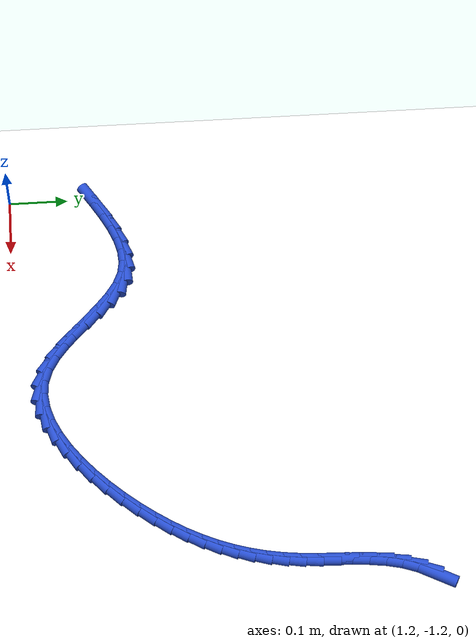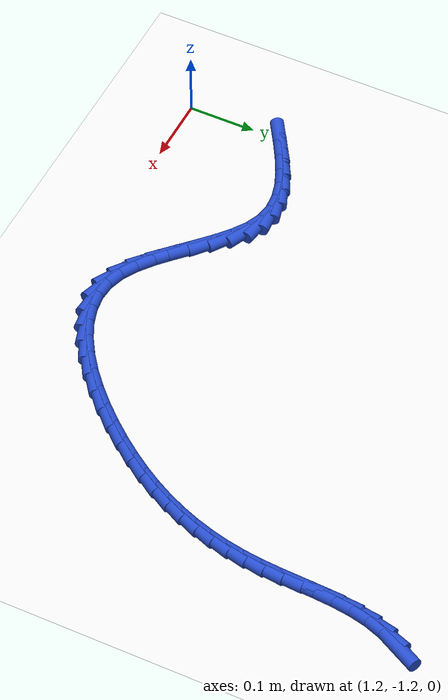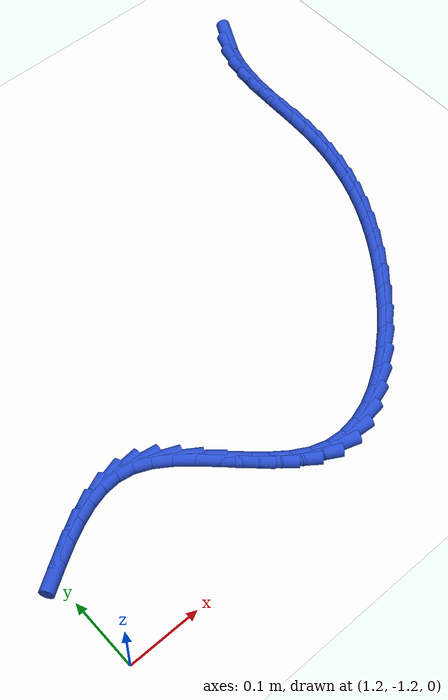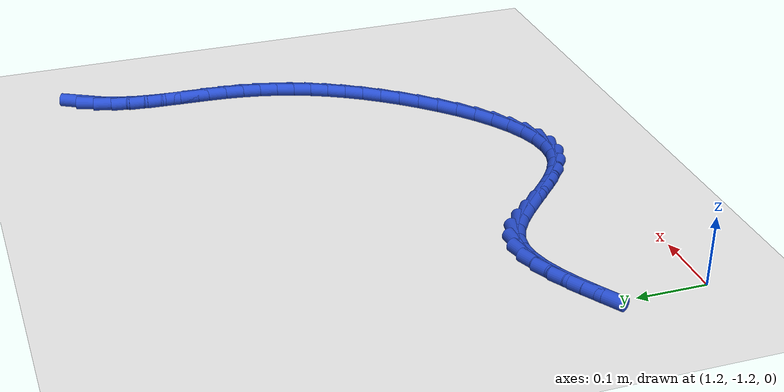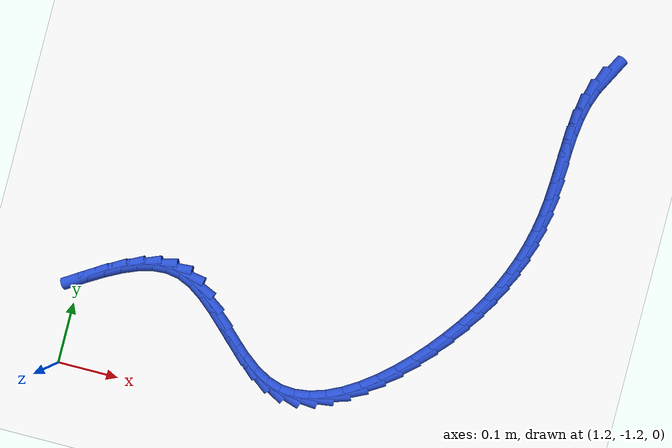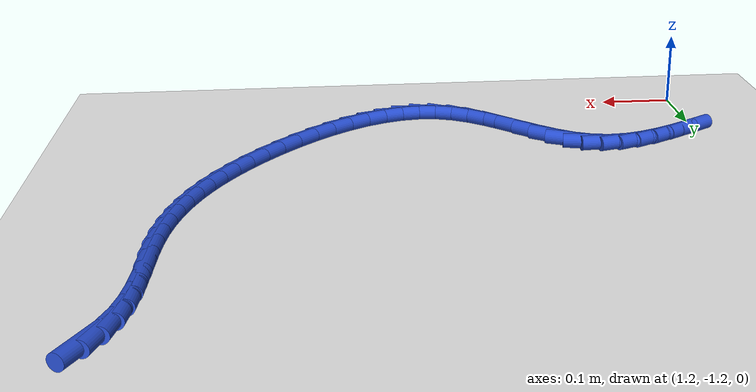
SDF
<sdf version="1.6">
 <world name="default">
  <model name="ground_plane">
   <static>1</static>
   <link name="link">
    <collision name="collision">
     <geometry><plane><normal>0 0 1</normal><size>100 100</size></plane></geometry>
     <surface><friction><ode><mu>100</mu><mu2>50</mu2></ode></friction></surface>
    </collision>
    <visual name="visual">
     <cast_shadows>0</cast_shadows>
     <geometry><plane><normal>0 0 1</normal><size>100 100</size></plane></geometry>
     <material>
      <script><uri>file://media/materials/scripts/gazebo.material</uri><name>Gazebo/WhiteGlow</name></script>
     </material>
    </visual>
   </link>
  </model>
  <model name="line">
   <link name="link_151">
    <pose>1.943033708011855 -0.5313639473231329 0.01 0 1.57 1.0860366454260373</pose>
    <collision name="collision">
     <geometry><cylinder><radius>0.01</radius><length>0.08</length></cylinder></geometry>
    </collision>
    <visual name="visual">
     <material>
      <script><name>Gazebo/Blue</name><uri>file://media/materials/scripts/gazebo.material</uri></script>
     </material>
     <geometry><cylinder><radius>0.01</radius><length>0.08</length></cylinder></geometry>
    </visual>
   </link>
   <link name="link_152">
    <pose>1.930702132157922 -0.5547779327994191 0.01 0 1.57 1.2293028746320067</pose>
    <collision name="collision">
     <geometry><cylinder><radius>0.01</radius><length>0.08</length></cylinder></geometry>
    </collision>
    <visual name="visual">
     <material>
      <script><name>Gazebo/Blue</name><uri>file://media/materials/scripts/gazebo.material</uri></script>
     </material>
     <geometry><cylinder><radius>0.01</radius><length>0.08</length></cylinder></geometry>
    </visual>
   </link>
   <link name="link_153">
    <pose>1.9218249859987055 -0.5797545625352505 0.01 0 1.57 1.35363578033377</pose>
    <collision name="collision">
     <geometry><cylinder><radius>0.01</radius><length>0.08</length></cylinder></geometry>
    </collision>
    <visual name="visual">
     <material>
      <script><name>Gazebo/Blue</name><uri>file://media/materials/scripts/gazebo.material</uri></script>
     </material>
     <geometry><cylinder><radius>0.01</radius><length>0.08</length></cylinder></geometry>
    </visual>
   </link>
   <link name="link_154">
    <pose>1.916008716091856 -0.6061154831035255 0.01 0 1.57 1.443277557621155</pose>
    <collision name="collision">
     <geometry><cylinder><radius>0.01</radius><length>0.08</length></cylinder></geometry>
    </collision>
    <visual name="visual">
     <material>
      <script><name>Gazebo/Blue</name><uri>file://media/materials/scripts/gazebo.material</uri></script>
     </material>
     <geometry><cylinder><radius>0.01</radius><length>0.08</length></cylinder></geometry>
    </visual>
   </link>
   <link name="link_155">
    <pose>1.9124957474366315 -0.6335146377511509 0.01 0 1.57 1.5008353037387863</pose>
    <collision name="collision">
     <geometry><cylinder><radius>0.01</radius><length>0.08</length></cylinder></geometry>
    </collision>
    <visual name="visual">
     <material>
      <script><name>Gazebo/Blue</name><uri>file://media/materials/scripts/gazebo.material</uri></script>
     </material>
     <geometry><cylinder><radius>0.01</radius><length>0.08</length></cylinder></geometry>
    </visual>
   </link>
   <link name="link_156">
    <pose>1.910527276083874 -0.6616054035532447 0.01 0 1.57 1.5292255427668227</pose>
    <collision name="collision">
     <geometry><cylinder><radius>0.01</radius><length>0.08</length></cylinder></geometry>
    </collision>
    <visual name="visual">
     <material>
      <script><name>Gazebo/Blue</name><uri>file://media/materials/scripts/gazebo.material</uri></script>
     </material>
     <geometry><cylinder><radius>0.01</radius><length>0.08</length></cylinder></geometry>
    </visual>
   </link>
   <link name="link_157">
    <pose>1.9093444980844247 -0.6900411575849228 0.01 0 1.57 1.5301672327749765</pose>
    <collision name="collision">
     <geometry><cylinder><radius>0.01</radius><length>0.08</length></cylinder></geometry>
    </collision>
    <visual name="visual">
     <material>
      <script><name>Gazebo/Blue</name><uri>file://media/materials/scripts/gazebo.material</uri></script>
     </material>
     <geometry><cylinder><radius>0.01</radius><length>0.08</length></cylinder></geometry>
    </visual>
   </link>
   <link name="link_158">
    <pose>1.908188609489125 -0.7184752769213031 0.01 0 1.57 1.5036818524684954</pose>
    <collision name="collision">
     <geometry><cylinder><radius>0.01</radius><length>0.08</length></cylinder></geometry>
    </collision>
    <visual name="visual">
     <material>
      <script><name>Gazebo/Blue</name><uri>file://media/materials/scripts/gazebo.material</uri></script>
     </material>
     <geometry><cylinder><radius>0.01</radius><length>0.08</length></cylinder></geometry>
    </visual>
   </link>
   <link name="link_159">
    <pose>1.9063008063488158 -0.7465611386375032 0.01 0 1.57 1.452475142938964</pose>
    <collision name="collision">
     <geometry><cylinder><radius>0.01</radius><length>0.08</length></cylinder></geometry>
    </collision>
    <visual name="visual">
     <material>
      <script><name>Gazebo/Blue</name><uri>file://media/materials/scripts/gazebo.material</uri></script>
     </material>
     <geometry><cylinder><radius>0.01</radius><length>0.08</length></cylinder></geometry>
    </visual>
   </link>
   <link name="link_160">
    <pose>1.9030366516896617 -0.7740195167704279 0.01 0 1.57 1.393670815576754</pose>
    <collision name="collision">
     <geometry><cylinder><radius>0.01</radius><length>0.08</length></cylinder></geometry>
    </collision>
    <visual name="visual">
     <material>
      <script><name>Gazebo/Blue</name><uri>file://media/materials/scripts/gazebo.material</uri></script>
     </material>
     <geometry><cylinder><radius>0.01</radius><length>0.08</length></cylinder></geometry>
    </visual>
   </link>
   <link name="link_161">
    <pose>1.8982330869543171 -0.8008548637759484 0.01 0 1.57 1.332754528721536</pose>
    <collision name="collision">
     <geometry><cylinder><radius>0.01</radius><length>0.08</length></cylinder></geometry>
    </collision>
    <visual name="visual">
     <material>
      <script><name>Gazebo/Blue</name><uri>file://media/materials/scripts/gazebo.material</uri></script>
     </material>
     <geometry><cylinder><radius>0.01</radius><length>0.08</length></cylinder></geometry>
    </visual>
   </link>
   <link name="link_162">
    <pose>1.8918536849717844 -0.8271462565431055 0.01 0 1.57 1.270704863558683</pose>
    <collision name="collision">
     <geometry><cylinder><radius>0.01</radius><length>0.08</length></cylinder></geometry>
    </collision>
    <visual name="visual">
     <material>
      <script><name>Gazebo/Blue</name><uri>file://media/materials/scripts/gazebo.material</uri></script>
     </material>
     <geometry><cylinder><radius>0.01</radius><length>0.08</length></cylinder></geometry>
    </visual>
   </link>
   <link name="link_163">
    <pose>1.8838620191604323 -0.8529727723082561 0.01 0 1.57 1.2085810032941826</pose>
    <collision name="collision">
     <geometry><cylinder><radius>0.01</radius><length>0.08</length></cylinder></geometry>
    </collision>
    <visual name="visual">
     <material>
      <script><name>Gazebo/Blue</name><uri>file://media/materials/scripts/gazebo.material</uri></script>
     </material>
     <geometry><cylinder><radius>0.01</radius><length>0.08</length></cylinder></geometry>
    </visual>
   </link>
   <link name="link_164">
    <pose>1.874221662938631 -0.8784134883077582 0.01 0 1.57 1.1474403853829385</pose>
    <collision name="collision">
     <geometry><cylinder><radius>0.01</radius><length>0.08</length></cylinder></geometry>
    </collision>
    <visual name="visual">
     <material>
      <script><name>Gazebo/Blue</name><uri>file://media/materials/scripts/gazebo.material</uri></script>
     </material>
     <geometry><cylinder><radius>0.01</radius><length>0.08</length></cylinder></geometry>
    </visual>
   </link>
   <link name="link_165">
    <pose>1.8628961897247485 -0.9035474817779692 0.01 0 1.57 1.0882567433073678</pose>
    <collision name="collision">
     <geometry><cylinder><radius>0.01</radius><length>0.08</length></cylinder></geometry>
    </collision>
    <visual name="visual">
     <material>
      <script><name>Gazebo/Blue</name><uri>file://media/materials/scripts/gazebo.material</uri></script>
     </material>
     <geometry><cylinder><radius>0.01</radius><length>0.08</length></cylinder></geometry>
    </visual>
   </link>
   <link name="link_166">
    <pose>1.8498491729371547 -0.9284538299552452 0.01 0 1.57 1.031853638440019</pose>
    <collision name="collision">
     <geometry><cylinder><radius>0.01</radius><length>0.08</length></cylinder></geometry>
    </collision>
    <visual name="visual">
     <material>
      <script><name>Gazebo/Blue</name><uri>file://media/materials/scripts/gazebo.material</uri></script>
     </material>
     <geometry><cylinder><radius>0.01</radius><length>0.08</length></cylinder></geometry>
    </visual>
   </link>
   <link name="link_167">
    <pose>1.8350441859942193 -0.9532116100759441 0.01 0 1.57 0.9788634978069253</pose>
    <collision name="collision">
     <geometry><cylinder><radius>0.01</radius><length>0.08</length></cylinder></geometry>
    </collision>
    <visual name="visual">
     <material>
      <script><name>Gazebo/Blue</name><uri>file://media/materials/scripts/gazebo.material</uri></script>
     </material>
     <geometry><cylinder><radius>0.01</radius><length>0.08</length></cylinder></geometry>
    </visual>
   </link>
   <link name="link_168">
    <pose>1.8184448023143107 -0.9778998993764236 0.01 0 1.57 0.9297086342176595</pose>
    <collision name="collision">
     <geometry><cylinder><radius>0.01</radius><length>0.08</length></cylinder></geometry>
    </collision>
    <visual name="visual">
     <material>
      <script><name>Gazebo/Blue</name><uri>file://media/materials/scripts/gazebo.material</uri></script>
     </material>
     <geometry><cylinder><radius>0.01</radius><length>0.08</length></cylinder></geometry>
    </visual>
   </link>
   <link name="link_169">
    <pose>1.8000149495862785 -1.0025969879653414 0.01 0 1.57 0.8829764585168599</pose>
    <collision name="collision">
     <geometry><cylinder><radius>0.01</radius><length>0.08</length></cylinder></geometry>
    </collision>
    <visual name="visual">
     <material>
      <script><name>Gazebo/Blue</name><uri>file://media/materials/scripts/gazebo.material</uri></script>
     </material>
     <geometry><cylinder><radius>0.01</radius><length>0.08</length></cylinder></geometry>
    </visual>
   </link>
   <link name="link_170">
    <pose>1.7798011681152268 -1.0271976150138604 0.01 0 1.57 0.8338442475203783</pose>
    <collision name="collision">
     <geometry><cylinder><radius>0.01</radius><length>0.08</length></cylinder></geometry>
    </collision>
    <visual name="visual">
     <material>
      <script><name>Gazebo/Blue</name><uri>file://media/materials/scripts/gazebo.material</uri></script>
     </material>
     <geometry><cylinder><radius>0.01</radius><length>0.08</length></cylinder></geometry>
    </visual>
   </link>
   <link name="link_171">
    <pose>1.7580381485868453 -1.0511784821062635 0.01 0 1.57 0.7794721221610186</pose>
    <collision name="collision">
     <geometry><cylinder><radius>0.01</radius><length>0.08</length></cylinder></geometry>
    </collision>
    <visual name="visual">
     <material>
      <script><name>Gazebo/Blue</name><uri>file://media/materials/scripts/gazebo.material</uri></script>
     </material>
     <geometry><cylinder><radius>0.01</radius><length>0.08</length></cylinder></geometry>
    </visual>
   </link>
   <link name="link_172">
    <pose>1.7349866441395219 -1.0739583845669494 0.01 0 1.57 0.7171434347511889</pose>
    <collision name="collision">
     <geometry><cylinder><radius>0.01</radius><length>0.08</length></cylinder></geometry>
    </collision>
    <visual name="visual">
     <material>
      <script><name>Gazebo/Blue</name><uri>file://media/materials/scripts/gazebo.material</uri></script>
     </material>
     <geometry><cylinder><radius>0.01</radius><length>0.08</length></cylinder></geometry>
    </visual>
   </link>
   <link name="link_173">
    <pose>1.7109074079116462 -1.094956117720316 0.01 0 1.57 0.6434933301573655</pose>
    <collision name="collision">
     <geometry><cylinder><radius>0.01</radius><length>0.08</length></cylinder></geometry>
    </collision>
    <visual name="visual">
     <material>
      <script><name>Gazebo/Blue</name><uri>file://media/materials/scripts/gazebo.material</uri></script>
     </material>
     <geometry><cylinder><radius>0.01</radius><length>0.08</length></cylinder></geometry>
    </visual>
   </link>
   <link name="link_174">
    <pose>1.6860611930416078 -1.1135904768907636 0.01 0 1.57 0.5541766729488521</pose>
    <collision name="collision">
     <geometry><cylinder><radius>0.01</radius><length>0.08</length></cylinder></geometry>
    </collision>
    <visual name="visual">
     <material>
      <script><name>Gazebo/Blue</name><uri>file://media/materials/scripts/gazebo.material</uri></script>
     </material>
     <geometry><cylinder><radius>0.01</radius><length>0.08</length></cylinder></geometry>
    </visual>
   </link>
   <link name="link_175">
    <pose>1.6607087526677948 -1.1292802574026906 0.01 0 1.57 0.4436073323603183</pose>
    <collision name="collision">
     <geometry><cylinder><radius>0.01</radius><length>0.08</length></cylinder></geometry>
    </collision>
    <visual name="visual">
     <material>
      <script><name>Gazebo/Blue</name><uri>file://media/materials/scripts/gazebo.material</uri></script>
     </material>
     <geometry><cylinder><radius>0.01</radius><length>0.08</length></cylinder></geometry>
    </visual>
   </link>
   <link name="link_176">
    <pose>1.6351108399285965 -1.1414442545804966 0.01 0 1.57 0.30510677520673435</pose>
    <collision name="collision">
     <geometry><cylinder><radius>0.01</radius><length>0.08</length></cylinder></geometry>
    </collision>
    <visual name="visual">
     <material>
      <script><name>Gazebo/Blue</name><uri>file://media/materials/scripts/gazebo.material</uri></script>
     </material>
     <geometry><cylinder><radius>0.01</radius><length>0.08</length></cylinder></geometry>
    </visual>
   </link>
   <link name="link_177">
    <pose>1.6095282079624023 -1.1495012637485804 0.01 0 1.57 0.13234200292197307</pose>
    <collision name="collision">
     <geometry><cylinder><radius>0.01</radius><length>0.08</length></cylinder></geometry>
    </collision>
    <visual name="visual">
     <material>
      <script><name>Gazebo/Blue</name><uri>file://media/materials/scripts/gazebo.material</uri></script>
     </material>
     <geometry><cylinder><radius>0.01</radius><length>0.08</length></cylinder></geometry>
    </visual>
   </link>
   <link name="link_178">
    <pose>1.5842216099075996 -1.1528700802313407 0.01 0 1.57 -0.07657967754146972</pose>
    <collision name="collision">
     <geometry><cylinder><radius>0.01</radius><length>0.08</length></cylinder></geometry>
    </collision>
    <visual name="visual">
     <material>
      <script><name>Gazebo/Blue</name><uri>file://media/materials/scripts/gazebo.material</uri></script>
     </material>
     <geometry><cylinder><radius>0.01</radius><length>0.08</length></cylinder></geometry>
    </visual>
   </link>
   <link name="link_179">
    <pose>1.5594517989025796 -1.1509694993531776 0.01 0 1.57 -0.3118244989158235</pose>
    <collision name="collision">
     <geometry><cylinder><radius>0.01</radius><length>0.08</length></cylinder></geometry>
    </collision>
    <visual name="visual">
     <material>
      <script><name>Gazebo/Blue</name><uri>file://media/materials/scripts/gazebo.material</uri></script>
     </material>
     <geometry><cylinder><radius>0.01</radius><length>0.08</length></cylinder></geometry>
    </visual>
   </link>
   <link name="link_180">
    <pose>1.535474699514158 -1.143240711690777 0.01 0 1.57 -0.5202882297894306</pose>
    <collision name="collision">
     <geometry><cylinder><radius>0.01</radius><length>0.08</length></cylinder></geometry>
    </collision>
    <visual name="visual">
     <material>
      <script><name>Gazebo/Blue</name><uri>file://media/materials/scripts/gazebo.material</uri></script>
     </material>
     <geometry><cylinder><radius>0.01</radius><length>0.08</length></cylinder></geometry>
    </visual>
   </link>
   <link name="link_181">
    <pose>1.5123583526633158 -1.129996325296277 0.01 0 1.57 -0.6573666534373747</pose>
    <collision name="collision">
     <geometry><cylinder><radius>0.01</radius><length>0.08</length></cylinder></geometry>
    </collision>
    <visual name="visual">
     <material>
      <script><name>Gazebo/Blue</name><uri>file://media/materials/scripts/gazebo.material</uri></script>
     </material>
     <geometry><cylinder><radius>0.01</radius><length>0.08</length></cylinder></geometry>
    </visual>
   </link>
   <link name="link_182">
    <pose>1.4899266316821567 -1.1126814145572492 0.01 0 1.57 -0.735804575395423</pose>
    <collision name="collision">
     <geometry><cylinder><radius>0.01</radius><length>0.08</length></cylinder></geometry>
    </collision>
    <visual name="visual">
     <material>
      <script><name>Gazebo/Blue</name><uri>file://media/materials/scripts/gazebo.material</uri></script>
     </material>
     <geometry><cylinder><radius>0.01</radius><length>0.08</length></cylinder></geometry>
    </visual>
   </link>
   <link name="link_183">
    <pose>1.4679870817000242 -1.0928167852063895 0.01 0 1.57 -0.7678539399796038</pose>
    <collision name="collision">
     <geometry><cylinder><radius>0.01</radius><length>0.08</length></cylinder></geometry>
    </collision>
    <visual name="visual">
     <material>
      <script><name>Gazebo/Blue</name><uri>file://media/materials/scripts/gazebo.material</uri></script>
     </material>
     <geometry><cylinder><radius>0.01</radius><length>0.08</length></cylinder></geometry>
    </visual>
   </link>
   <link name="link_184">
    <pose>1.4463472478462631 -1.071923242976393 0.01 0 1.57 -0.7584357183404179</pose>
    <collision name="collision">
     <geometry><cylinder><radius>0.01</radius><length>0.08</length></cylinder></geometry>
    </collision>
    <visual name="visual">
     <material>
      <script><name>Gazebo/Blue</name><uri>file://media/materials/scripts/gazebo.material</uri></script>
     </material>
     <geometry><cylinder><radius>0.01</radius><length>0.08</length></cylinder></geometry>
    </visual>
   </link>
   <link name="link_185">
    <pose>1.4248146752502187 -1.051521593599956 0.01 0 1.57 -0.7048658794458817</pose>
    <collision name="collision">
     <geometry><cylinder><radius>0.01</radius><length>0.08</length></cylinder></geometry>
    </collision>
    <visual name="visual">
     <material>
      <script><name>Gazebo/Blue</name><uri>file://media/materials/scripts/gazebo.material</uri></script>
     </material>
     <geometry><cylinder><radius>0.01</radius><length>0.08</length></cylinder></geometry>
    </visual>
   </link>
   <link name="link_186">
    <pose>1.4031969090412344 -1.0331326428097747 0.01 0 1.57 -0.5961317043800382</pose>
    <collision name="collision">
     <geometry><cylinder><radius>0.01</radius><length>0.08</length></cylinder></geometry>
    </collision>
    <visual name="visual">
     <material>
      <script><name>Gazebo/Blue</name><uri>file://media/materials/scripts/gazebo.material</uri></script>
     </material>
     <geometry><cylinder><radius>0.01</radius><length>0.08</length></cylinder></geometry>
    </visual>
   </link>
   <link name="link_187">
    <pose>1.3813014943486552 -1.0182771963385446 0.01 0 1.57 -0.4130328594239171</pose>
    <collision name="collision">
     <geometry><cylinder><radius>0.01</radius><length>0.08</length></cylinder></geometry>
    </collision>
    <visual name="visual">
     <material>
      <script><name>Gazebo/Blue</name><uri>file://media/materials/scripts/gazebo.material</uri></script>
     </material>
     <geometry><cylinder><radius>0.01</radius><length>0.08</length></cylinder></geometry>
    </visual>
   </link>
   <link name="link_188">
    <pose>1.3589360108153643 -1.0084757075931092 0.01 0 1.57 -0.1616391382979754</pose>
    <collision name="collision">
     <geometry><cylinder><radius>0.01</radius><length>0.08</length></cylinder></geometry>
    </collision>
    <visual name="visual">
     <material>
      <script><name>Gazebo/Blue</name><uri>file://media/materials/scripts/gazebo.material</uri></script>
     </material>
     <geometry><cylinder><radius>0.01</radius><length>0.08</length></cylinder></geometry>
    </visual>
   </link>
   <link name="link_189">
    <pose>1.3359589380205468 -1.0047290262572557 0.01 0 1.57 0.0739976929333733</pose>
    <collision name="collision">
     <geometry><cylinder><radius>0.01</radius><length>0.08</length></cylinder></geometry>
    </collision>
    <visual name="visual">
     <material>
      <script><name>Gazebo/Blue</name><uri>file://media/materials/scripts/gazebo.material</uri></script>
     </material>
     <geometry><cylinder><radius>0.01</radius><length>0.08</length></cylinder></geometry>
    </visual>
   </link>
   <link name="link_190">
    <pose>1.3123816816998803 -1.0064768802130186 0.01 0 1.57 0.2588027224929342</pose>
    <collision name="collision">
     <geometry><cylinder><radius>0.01</radius><length>0.08</length></cylinder></geometry>
    </collision>
    <visual name="visual">
     <material>
      <script><name>Gazebo/Blue</name><uri>file://media/materials/scripts/gazebo.material</uri></script>
     </material>
     <geometry><cylinder><radius>0.01</radius><length>0.08</length></cylinder></geometry>
    </visual>
   </link>
   <link name="link_191">
    <pose>1.2882442491716701 -1.01286702273699 0.01 0 1.57 0.391544821467648</pose>
    <collision name="collision">
     <geometry><cylinder><radius>0.01</radius><length>0.08</length></cylinder></geometry>
    </collision>
    <visual name="visual">
     <material>
      <script><name>Gazebo/Blue</name><uri>file://media/materials/scripts/gazebo.material</uri></script>
     </material>
     <geometry><cylinder><radius>0.01</radius><length>0.08</length></cylinder></geometry>
    </visual>
   </link>
   <link name="link_192">
    <pose>1.2635866477542208 -1.023047207105762 0.01 0 1.57 0.48096935428640886</pose>
    <collision name="collision">
     <geometry><cylinder><radius>0.01</radius><length>0.08</length></cylinder></geometry>
    </collision>
    <visual name="visual">
     <material>
      <script><name>Gazebo/Blue</name><uri>file://media/materials/scripts/gazebo.material</uri></script>
     </material>
     <geometry><cylinder><radius>0.01</radius><length>0.08</length></cylinder></geometry>
    </visual>
   </link>
   <link name="link_193">
    <pose>1.2384488847658375 -1.0361651865959263 0.01 0 1.57 0.5362920794366068</pose>
    <collision name="collision">
     <geometry><cylinder><radius>0.01</radius><length>0.08</length></cylinder></geometry>
    </collision>
    <visual name="visual">
     <material>
      <script><name>Gazebo/Blue</name><uri>file://media/materials/scripts/gazebo.material</uri></script>
     </material>
     <geometry><cylinder><radius>0.01</radius><length>0.08</length></cylinder></geometry>
    </visual>
   </link>
   <link name="link_194">
    <pose>1.2128709675248255 -1.0513687144840753 0.01 0 1.57 0.5641312165402604</pose>
    <collision name="collision">
     <geometry><cylinder><radius>0.01</radius><length>0.08</length></cylinder></geometry>
    </collision>
    <visual name="visual">
     <material>
      <script><name>Gazebo/Blue</name><uri>file://media/materials/scripts/gazebo.material</uri></script>
     </material>
     <geometry><cylinder><radius>0.01</radius><length>0.08</length></cylinder></geometry>
    </visual>
   </link>
  </model>
 </world>
</sdf>
